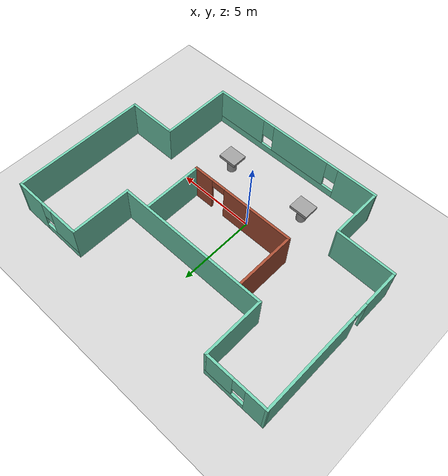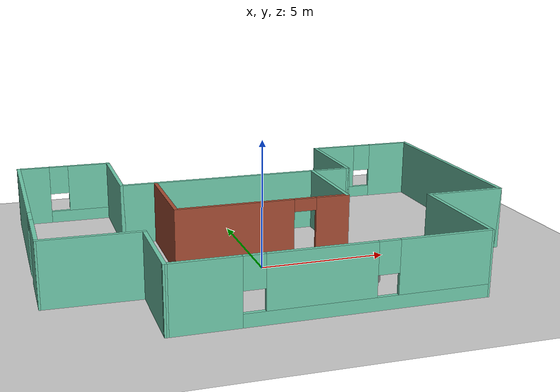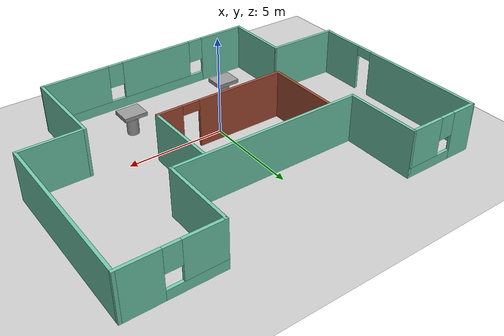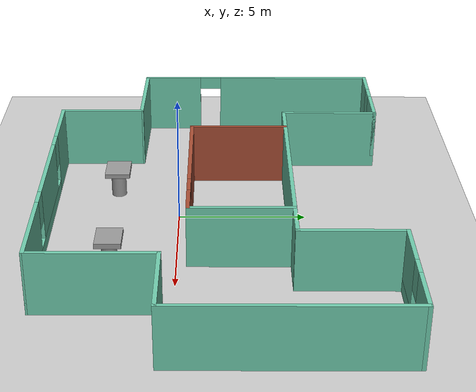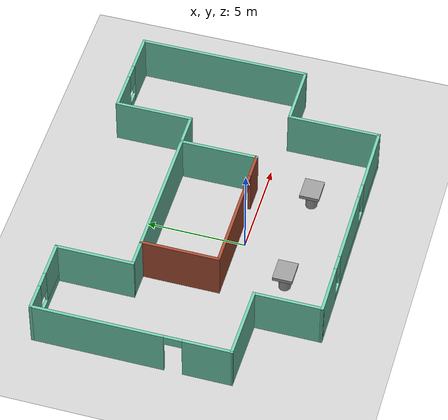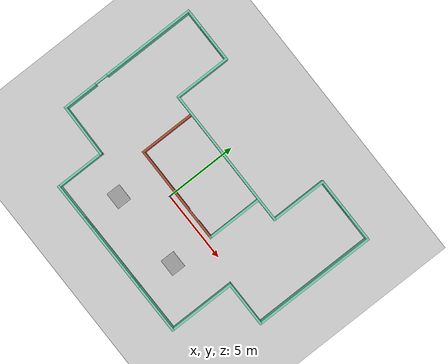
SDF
<sdf version="1.6">
 <world name="default">
  <plugin name="hello" filename="libhello.so"/>
  <model name="mybuilding">
   <pose>0.69783 1.54031 0 0 -0 0</pose>
   <link name="Wall_0">
    <pose>-7.22439 6.63019 0 0 -0 0</pose>
    <visual name="Wall_0_Visual_0">
     <pose>-1.32037 0 1.25 0 -0 0</pose>
     <geometry><box><size>1.35925 0.15 2.5</size></box></geometry>
     <material>
      <script><uri>file://media/materials/scripts/gazebo.material</uri><name>Gazebo/Grey</name></script>
      <ambient>0.435294 0.796078 0.67451 1</ambient>
     </material>
     <meta><layer>0</layer></meta>
    </visual>
    <collision name="Wall_0_Collision_0">
     <geometry><box><size>1.35925 0.15 2.5</size></box></geometry>
     <pose>-1.32037 0 1.25 0 -0 0</pose>
    </collision>
    <visual name="Wall_0_Visual_1">
     <pose>0.679626 0 0.25 0 -0 0</pose>
     <geometry><box><size>2.64075 0.15 0.5</size></box></geometry>
     <material>
      <script><uri>file://media/materials/scripts/gazebo.material</uri><name>Gazebo/Grey</name></script>
      <ambient>0.435294 0.796078 0.67451 1</ambient>
     </material>
     <meta><layer>0</layer></meta>
    </visual>
    <collision name="Wall_0_Collision_1">
     <geometry><box><size>2.64075 0.15 0.5</size></box></geometry>
     <pose>0.679626 0 0.25 0 -0 0</pose>
    </collision>
    <visual name="Wall_0_Visual_2">
     <pose>1.07963 0 1.5 0 -0 0</pose>
     <geometry><box><size>1.84075 0.15 2</size></box></geometry>
     <material>
      <script><uri>file://media/materials/scripts/gazebo.material</uri><name>Gazebo/Grey</name></script>
      <ambient>0.435294 0.796078 0.67451 1</ambient>
     </material>
     <meta><layer>0</layer></meta>
    </visual>
    <collision name="Wall_0_Collision_2">
     <geometry><box><size>1.84075 0.15 2</size></box></geometry>
     <pose>1.07963 0 1.5 0 -0 0</pose>
    </collision>
    <visual name="Wall_0_Visual_3">
     <pose>-0.240749 0 1.9 0 -0 0</pose>
     <geometry><box><size>0.8 0.15 1.2</size></box></geometry>
     <material>
      <script><uri>file://media/materials/scripts/gazebo.material</uri><name>Gazebo/Grey</name></script>
      <ambient>0.435294 0.796078 0.67451 1</ambient>
     </material>
     <meta><layer>0</layer></meta>
    </visual>
    <collision name="Wall_0_Collision_3">
     <geometry><box><size>0.8 0.15 1.2</size></box></geometry>
     <pose>-0.240749 0 1.9 0 -0 0</pose>
    </collision>
   </link>
   <link name="Wall_1">
    <collision name="Wall_1_Collision">
     <geometry><box><size>4 0.15 2.5</size></box></geometry>
     <pose>0 0 1.25 0 -0 0</pose>
    </collision>
    <visual name="Wall_1_Visual">
     <pose>0 0 1.25 0 -0 0</pose>
     <geometry><box><size>4 0.15 2.5</size></box></geometry>
     <material>
      <script><uri>file://media/materials/scripts/gazebo.material</uri><name>Gazebo/Grey</name></script>
      <ambient>0.435294 0.796078 0.67451 1</ambient>
     </material>
     <meta><layer>0</layer></meta>
    </visual>
    <pose>-5.29939 4.70519 0 0 0 -1.5708</pose>
   </link>
   <link name="Wall_10">
    <pose>0.280609 -6.59981 0 0 -0 0.005199</pose>
    <visual name="Wall_10_Visual_0">
     <pose>-4.54114 0 1.25 0 -0 0</pose>
     <geometry><box><size>2.60788 0.15 2.5</size></box></geometry>
     <material>
      <script><uri>file://media/materials/scripts/gazebo.material</uri><name>Gazebo/Grey</name></script>
      <ambient>0.435294 0.796078 0.67451 1</ambient>
     </material>
     <meta><layer>0</layer></meta>
    </visual>
    <collision name="Wall_10_Collision_0">
     <geometry><box><size>2.60788 0.15 2.5</size></box></geometry>
     <pose>-4.54114 0 1.25 0 -0 0</pose>
    </collision>
    <visual name="Wall_10_Visual_1">
     <pose>1.30394 0 0.25 0 -0 0</pose>
     <geometry><box><size>9.08228 0.15 0.5</size></box></geometry>
     <material>
      <script><uri>file://media/materials/scripts/gazebo.material</uri><name>Gazebo/Grey</name></script>
      <ambient>0.435294 0.796078 0.67451 1</ambient>
     </material>
     <meta><layer>0</layer></meta>
    </visual>
    <collision name="Wall_10_Collision_1">
     <geometry><box><size>9.08228 0.15 0.5</size></box></geometry>
     <pose>1.30394 0 0.25 0 -0 0</pose>
    </collision>
    <visual name="Wall_10_Visual_2">
     <pose>-0.463066 0 1.5 0 -0 0</pose>
     <geometry><box><size>3.94827 0.15 2</size></box></geometry>
     <material>
      <script><uri>file://media/materials/scripts/gazebo.material</uri><name>Gazebo/Grey</name></script>
      <ambient>0.435294 0.796078 0.67451 1</ambient>
     </material>
     <meta><layer>0</layer></meta>
    </visual>
    <collision name="Wall_10_Collision_2">
     <geometry><box><size>3.94827 0.15 2</size></box></geometry>
     <pose>-0.463066 0 1.5 0 -0 0</pose>
    </collision>
    <visual name="Wall_10_Visual_3">
     <pose>4.07807 0 1.5 0 -0 0</pose>
     <geometry><box><size>3.53401 0.15 2</size></box></geometry>
     <material>
      <script><uri>file://media/materials/scripts/gazebo.material</uri><name>Gazebo/Grey</name></script>
      <ambient>0.435294 0.796078 0.67451 1</ambient>
     </material>
     <meta><layer>0</layer></meta>
    </visual>
    <collision name="Wall_10_Collision_3">
     <geometry><box><size>3.53401 0.15 2</size></box></geometry>
     <pose>4.07807 0 1.5 0 -0 0</pose>
    </collision>
    <visual name="Wall_10_Visual_4">
     <pose>-2.8372 0 1.9 0 -0 0</pose>
     <geometry><box><size>0.8 0.15 1.2</size></box></geometry>
     <material>
      <script><uri>file://media/materials/scripts/gazebo.material</uri><name>Gazebo/Grey</name></script>
      <ambient>0.435294 0.796078 0.67451 1</ambient>
     </material>
     <meta><layer>0</layer></meta>
    </visual>
    <collision name="Wall_10_Collision_4">
     <geometry><box><size>0.8 0.15 1.2</size></box></geometry>
     <pose>-2.8372 0 1.9 0 -0 0</pose>
    </collision>
    <visual name="Wall_10_Visual_5">
     <pose>1.91107 0 1.9 0 -0 0</pose>
     <geometry><box><size>0.8 0.15 1.2</size></box></geometry>
     <material>
      <script><uri>file://media/materials/scripts/gazebo.material</uri><name>Gazebo/Grey</name></script>
      <ambient>0.435294 0.796078 0.67451 1</ambient>
     </material>
     <meta><layer>0</layer></meta>
    </visual>
    <collision name="Wall_10_Collision_5">
     <geometry><box><size>0.8 0.15 1.2</size></box></geometry>
     <pose>1.91107 0 1.9 0 -0 0</pose>
    </collision>
   </link>
   <link name="Wall_11">
    <collision name="Wall_11_Collision">
     <geometry><box><size>4.75 0.15 2.5</size></box></geometry>
     <pose>0 0 1.25 0 -0 0</pose>
    </collision>
    <visual name="Wall_11_Visual">
     <pose>0 0 1.25 0 -0 0</pose>
     <geometry><box><size>4.75 0.15 2.5</size></box></geometry>
     <material>
      <script><uri>file://media/materials/scripts/gazebo.material</uri><name>Gazebo/Grey</name></script>
      <ambient>0.435294 0.796078 0.67451 1</ambient>
     </material>
     <meta><layer>0</layer></meta>
    </visual>
    <pose>6.05061 -4.26981 0 0 -0 1.5708</pose>
   </link>
   <link name="Wall_12">
    <collision name="Wall_12_Collision">
     <geometry><box><size>3.25 0.15 2.5</size></box></geometry>
     <pose>0 0 1.25 0 -0 0</pose>
    </collision>
    <visual name="Wall_12_Visual">
     <pose>0 0 1.25 0 -0 0</pose>
     <geometry><box><size>3.25 0.15 2.5</size></box></geometry>
     <material>
      <script><uri>file://media/materials/scripts/gazebo.material</uri><name>Gazebo/Grey</name></script>
      <ambient>0.435294 0.796078 0.67451 1</ambient>
     </material>
     <meta><layer>0</layer></meta>
    </visual>
    <pose>7.60061 -1.96981 0 0 -0 0</pose>
   </link>
   <link name="Wall_13">
    <collision name="Wall_13_Collision">
     <geometry><box><size>8.75 0.15 2.5</size></box></geometry>
     <pose>0 0 1.25 0 -0 0</pose>
    </collision>
    <visual name="Wall_13_Visual">
     <pose>0 0 1.25 0 -0 0</pose>
     <geometry><box><size>8.75 0.15 2.5</size></box></geometry>
     <material>
      <script><uri>file://media/materials/scripts/gazebo.material</uri><name>Gazebo/Grey</name></script>
      <ambient>0.435294 0.796078 0.67451 1</ambient>
     </material>
     <meta><layer>0</layer></meta>
    </visual>
    <pose>9.15061 2.33019 0 0 -0 1.5708</pose>
   </link>
   <link name="Wall_16">
    <pose>6.85061 6.63019 0 0 -0 3.14159</pose>
    <visual name="Wall_16_Visual_0">
     <pose>-1.39467 0 1.25 0 -0 0</pose>
     <geometry><box><size>1.96067 0.15 2.5</size></box></geometry>
     <material>
      <script><uri>file://media/materials/scripts/gazebo.material</uri><name>Gazebo/Grey</name></script>
      <ambient>0.435294 0.796078 0.67451 1</ambient>
     </material>
     <meta><layer>0</layer></meta>
    </visual>
    <collision name="Wall_16_Collision_0">
     <geometry><box><size>1.96067 0.15 2.5</size></box></geometry>
     <pose>-1.39467 0 1.25 0 -0 0</pose>
    </collision>
    <visual name="Wall_16_Visual_1">
     <pose>0.980335 0 0.25 0 -0 0</pose>
     <geometry><box><size>2.78933 0.15 0.5</size></box></geometry>
     <material>
      <script><uri>file://media/materials/scripts/gazebo.material</uri><name>Gazebo/Grey</name></script>
      <ambient>0.435294 0.796078 0.67451 1</ambient>
     </material>
     <meta><layer>0</layer></meta>
    </visual>
    <collision name="Wall_16_Collision_1">
     <geometry><box><size>2.78933 0.15 0.5</size></box></geometry>
     <pose>0.980335 0 0.25 0 -0 0</pose>
    </collision>
    <visual name="Wall_16_Visual_2">
     <pose>1.38034 0 1.5 0 -0 0</pose>
     <geometry><box><size>1.98933 0.15 2</size></box></geometry>
     <material>
      <script><uri>file://media/materials/scripts/gazebo.material</uri><name>Gazebo/Grey</name></script>
      <ambient>0.435294 0.796078 0.67451 1</ambient>
     </material>
     <meta><layer>0</layer></meta>
    </visual>
    <collision name="Wall_16_Collision_2">
     <geometry><box><size>1.98933 0.15 2</size></box></geometry>
     <pose>1.38034 0 1.5 0 -0 0</pose>
    </collision>
    <visual name="Wall_16_Visual_3">
     <pose>-0.01433 0 1.9 0 -0 0</pose>
     <geometry><box><size>0.8 0.15 1.2</size></box></geometry>
     <material>
      <script><uri>file://media/materials/scripts/gazebo.material</uri><name>Gazebo/Grey</name></script>
      <ambient>0.435294 0.796078 0.67451 1</ambient>
     </material>
     <meta><layer>0</layer></meta>
    </visual>
    <collision name="Wall_16_Collision_3">
     <geometry><box><size>0.8 0.15 1.2</size></box></geometry>
     <pose>-0.01433 0 1.9 0 -0 0</pose>
    </collision>
   </link>
   <link name="Wall_2">
    <collision name="Wall_2_Collision">
     <geometry><box><size>10 0.15 2.5</size></box></geometry>
     <pose>0 0 1.25 0 -0 0</pose>
    </collision>
    <visual name="Wall_2_Visual">
     <pose>0 0 1.25 0 -0 0</pose>
     <geometry><box><size>10 0.15 2.5</size></box></geometry>
     <material>
      <script><uri>file://media/materials/scripts/gazebo.material</uri><name>Gazebo/Grey</name></script>
      <ambient>0.435294 0.796078 0.67451 1</ambient>
     </material>
     <meta><layer>0</layer></meta>
    </visual>
    <pose>-0.374391 2.78019 0 0 -0 0</pose>
   </link>
   <link name="Wall_20">
    <collision name="Wall_20_Collision">
     <geometry><box><size>4 0.15 2.5</size></box></geometry>
     <pose>0 0 1.25 0 -0 0</pose>
    </collision>
    <visual name="Wall_20_Visual">
     <pose>0 0 1.25 0 -0 0</pose>
     <geometry><box><size>4 0.15 2.5</size></box></geometry>
     <material>
      <script><uri>file://media/materials/scripts/gazebo.material</uri><name>Gazebo/Bricks</name></script>
      <ambient>0.435294 0.796078 0.67451 1</ambient>
     </material>
     <meta><layer>0</layer></meta>
    </visual>
    <pose>-3.91339 0.834194 0 0 0 -1.5708</pose>
   </link>
   <link name="Wall_21">
    <pose>-0.488391 -1.09081 0 0 -0 0</pose>
    <visual name="Wall_21_Visual_0">
     <pose>-1.13745 0 1.25 0 -0 0</pose>
     <geometry><box><size>4.72509 0.15 2.5</size></box></geometry>
     <material>
      <script><uri>file://media/materials/scripts/gazebo.material</uri><name>Gazebo/Bricks</name></script>
      <ambient>0.435294 0.796078 0.67451 1</ambient>
     </material>
     <meta><layer>0</layer></meta>
    </visual>
    <collision name="Wall_21_Collision_0">
     <geometry><box><size>4.72509 0.15 2.5</size></box></geometry>
     <pose>-1.13745 0 1.25 0 -0 0</pose>
    </collision>
    <visual name="Wall_21_Visual_1">
     <pose>2.81255 0 1.25 0 -0 0</pose>
     <geometry><box><size>1.37491 0.15 2.5</size></box></geometry>
     <material>
      <script><uri>file://media/materials/scripts/gazebo.material</uri><name>Gazebo/Bricks</name></script>
      <ambient>0.435294 0.796078 0.67451 1</ambient>
     </material>
     <meta><layer>0</layer></meta>
    </visual>
    <collision name="Wall_21_Collision_1">
     <geometry><box><size>1.37491 0.15 2.5</size></box></geometry>
     <pose>2.81255 0 1.25 0 -0 0</pose>
    </collision>
    <visual name="Wall_21_Visual_2">
     <pose>1.67509 0 2.25 0 -0 0</pose>
     <geometry><box><size>0.9 0.15 0.5</size></box></geometry>
     <material>
      <script><uri>file://media/materials/scripts/gazebo.material</uri><name>Gazebo/Bricks</name></script>
      <ambient>0.435294 0.796078 0.67451 1</ambient>
     </material>
     <meta><layer>0</layer></meta>
    </visual>
    <collision name="Wall_21_Collision_2">
     <geometry><box><size>0.9 0.15 0.5</size></box></geometry>
     <pose>1.67509 0 2.25 0 -0 0</pose>
    </collision>
   </link>
   <link name="Wall_26">
    <collision name="Wall_26_Collision">
     <geometry><box><size>4 0.15 2.5</size></box></geometry>
     <pose>0 0 1.25 0 -0 0</pose>
    </collision>
    <visual name="Wall_26_Visual">
     <pose>0 0 1.25 0 -0 0</pose>
     <geometry><box><size>4 0.15 2.5</size></box></geometry>
     <material>
      <script><uri>file://media/materials/scripts/gazebo.material</uri><name>Gazebo/Grey</name></script>
      <ambient>0.435294 0.796078 0.67451 1</ambient>
     </material>
     <meta><layer>0</layer></meta>
    </visual>
    <pose>2.93661 0.834194 0 0 -0 1.5708</pose>
   </link>
   <link name="Wall_3">
    <collision name="Wall_3_Collision">
     <geometry><box><size>4 0.15 2.5</size></box></geometry>
     <pose>0 0 1.25 0 -0 0</pose>
    </collision>
    <visual name="Wall_3_Visual">
     <pose>0 0 1.25 0 -0 0</pose>
     <geometry><box><size>4 0.15 2.5</size></box></geometry>
     <material>
      <script><uri>file://media/materials/scripts/gazebo.material</uri><name>Gazebo/Grey</name></script>
      <ambient>0.435294 0.796078 0.67451 1</ambient>
     </material>
     <meta><layer>0</layer></meta>
    </visual>
    <pose>4.55061 4.70519 0 0 -0 1.5708</pose>
   </link>
   <link name="Wall_6">
    <pose>-9.14939 1.70519 0 0 0 -1.5708</pose>
    <visual name="Wall_6_Visual_0">
     <pose>-1.68817 0 1.25 0 -0 0</pose>
     <geometry><box><size>6.62366 0.15 2.5</size></box></geometry>
     <material>
      <script><uri>file://media/materials/scripts/gazebo.material</uri><name>Gazebo/Grey</name></script>
      <ambient>0.435294 0.796078 0.67451 1</ambient>
     </material>
     <meta><layer>0</layer></meta>
    </visual>
    <collision name="Wall_6_Collision_0">
     <geometry><box><size>6.62366 0.15 2.5</size></box></geometry>
     <pose>-1.68817 0 1.25 0 -0 0</pose>
    </collision>
    <visual name="Wall_6_Visual_1">
     <pose>3.76183 0 1.25 0 -0 0</pose>
     <geometry><box><size>2.47634 0.15 2.5</size></box></geometry>
     <material>
      <script><uri>file://media/materials/scripts/gazebo.material</uri><name>Gazebo/Grey</name></script>
      <ambient>0.435294 0.796078 0.67451 1</ambient>
     </material>
     <meta><layer>0</layer></meta>
    </visual>
    <collision name="Wall_6_Collision_1">
     <geometry><box><size>2.47634 0.15 2.5</size></box></geometry>
     <pose>3.76183 0 1.25 0 -0 0</pose>
    </collision>
    <visual name="Wall_6_Visual_2">
     <pose>2.07366 0 2.25 0 -0 0</pose>
     <geometry><box><size>0.9 0.15 0.5</size></box></geometry>
     <material>
      <script><uri>file://media/materials/scripts/gazebo.material</uri><name>Gazebo/Grey</name></script>
      <ambient>0.435294 0.796078 0.67451 1</ambient>
     </material>
     <meta><layer>0</layer></meta>
    </visual>
    <collision name="Wall_6_Collision_2">
     <geometry><box><size>0.9 0.15 0.5</size></box></geometry>
     <pose>2.07366 0 2.25 0 -0 0</pose>
    </collision>
   </link>
   <link name="Wall_8">
    <collision name="Wall_8_Collision">
     <geometry><box><size>3.81049 0.15 2.5</size></box></geometry>
     <pose>0 0 1.25 0 -0 0</pose>
    </collision>
    <visual name="Wall_8_Visual">
     <pose>0 0 1.25 0 -0 0</pose>
     <geometry><box><size>3.81049 0.15 2.5</size></box></geometry>
     <material>
      <script><uri>file://media/materials/scripts/gazebo.material</uri><name>Gazebo/Grey</name></script>
      <ambient>0.435294 0.796078 0.67451 1</ambient>
     </material>
     <meta><layer>0</layer></meta>
    </visual>
    <pose>-7.31939 -3.24981 0 0 0 -0.016392</pose>
   </link>
   <link name="Wall_9">
    <collision name="Wall_9_Collision">
     <geometry><box><size>3.5 0.15 2.5</size></box></geometry>
     <pose>0 0 1.25 0 -0 0</pose>
    </collision>
    <visual name="Wall_9_Visual">
     <pose>0 0 1.25 0 -0 0</pose>
     <geometry><box><size>3.5 0.15 2.5</size></box></geometry>
     <material>
      <script><uri>file://media/materials/scripts/gazebo.material</uri><name>Gazebo/Grey</name></script>
      <ambient>0.435294 0.796078 0.67451 1</ambient>
     </material>
     <meta><layer>0</layer></meta>
    </visual>
    <pose>-5.48939 -4.95481 0 0 0 -1.5708</pose>
   </link>
   <static>1</static>
  </model>
  <light name="sun" type="directional">
   <pose>0 0 10 0 -0 0</pose>
   <diffuse>0.8 0.8 0.8 1</diffuse>
   <specular>0.2 0.2 0.2 1</specular>
   <attenuation>
    <range>1000</range>
    <constant>0.9</constant>
    <linear>0.01</linear>
    <quadratic>0.001</quadratic>
   </attenuation>
   <direction>-0.5 0.1 -0.9</direction>
  </light>
  <model name="ground_plane">
   <static>1</static>
   <link name="link">
    <collision name="collision">
     <geometry><plane><normal>0 0 1</normal><size>100 100</size></plane></geometry>
     <surface>
      <contact><collide_bitmask>65535</collide_bitmask></contact>
      <friction><ode><mu>100</mu><mu2>50</mu2></ode></friction>
     </surface>
    </collision>
    <visual name="visual">
     <cast_shadows>0</cast_shadows>
     <geometry><plane><normal>0 0 1</normal><size>100 100</size></plane></geometry>
     <material>
      <script><uri>file://media/materials/scripts/gazebo.material</uri><name>Gazebo/Grey</name></script>
     </material>
    </visual>
   </link>
  </model>
  <gravity>0 0 -9.8</gravity>
  <magnetic_field>6e-06 2.3e-05 -4.2e-05</magnetic_field>
  <atmosphere type="adiabatic"/>
  <physics name="default_physics" default="0" type="ode">
   <max_step_size>0.001</max_step_size>
   <real_time_factor>1</real_time_factor>
   <real_time_update_rate>1000</real_time_update_rate>
  </physics>
  <scene><ambient>0.4 0.4 0.4 1</ambient><background>0.7 0.7 0.7 1</background><shadows>1</shadows></scene>
  <spherical_coordinates>
   <surface_model>EARTH_WGS84</surface_model>
   <latitude_deg>0</latitude_deg>
   <longitude_deg>0</longitude_deg>
   <elevation>0</elevation>
   <heading_deg>0</heading_deg>
  </spherical_coordinates>
  <model name="table">
   <link name="link_1">
    <pose>-0 -0 -0.3 0 -0 0</pose>
    <inertial>
     <mass>1</mass>
     <inertia><ixx>0.145833</ixx><ixy>0</ixy><ixz>0</ixz><iyy>0.145833</iyy><iyz>0</iyz><izz>0.125</izz></inertia>
    </inertial>
    <visual name="visual">
     <geometry><cylinder><radius>0.3</radius><length>1</length></cylinder></geometry>
     <material>
      <lighting>1</lighting>
      <script><uri>file://media/materials/scripts/gazebo.material</uri><name>Gazebo/Grey</name></script>
      <ambient>0.3 0.3 0.3 1</ambient>
      <diffuse>0.7 0.7 0.7 1</diffuse>
      <specular>0.01 0.01 0.01 1</specular>
      <emissive>0 0 0 1</emissive>
      <shader type="vertex"><normal_map>__default__</normal_map></shader>
     </material>
    </visual>
    <collision name="collision">
     <geometry><cylinder><radius>0.3</radius><length>1</length></cylinder></geometry>
     <surface>
      <friction>
       <ode><mu>1</mu><mu2>1</mu2><fdir1>0 0 0</fdir1><slip1>0</slip1><slip2>0</slip2></ode>
       <torsional>
        <coefficient>1</coefficient>
        <patch_radius>0</patch_radius>
        <surface_radius>0</surface_radius>
        <use_patch_radius>1</use_patch_radius>
        <ode><slip>0</slip></ode>
       </torsional>
      </friction>
      <bounce><restitution_coefficient>0</restitution_coefficient><threshold>1e+06</threshold></bounce>
      <contact>
       <collide_without_contact>0</collide_without_contact>
       <collide_without_contact_bitmask>1</collide_without_contact_bitmask>
       <collide_bitmask>1</collide_bitmask>
       <ode>
        <soft_cfm>0</soft_cfm>
        <soft_erp>0.2</soft_erp>
        <kp>1e+13</kp>
        <kd>1</kd>
        <max_vel>0.01</max_vel>
        <min_depth>0</min_depth>
       </ode>
       <bullet>
        <split_impulse>1</split_impulse>
        <split_impulse_penetration_threshold>-0.01</split_impulse_penetration_threshold>
        <soft_cfm>0</soft_cfm>
        <soft_erp>0.2</soft_erp>
        <kp>1e+13</kp>
        <kd>1</kd>
       </bullet>
      </contact>
     </surface>
    </collision>
   </link>
   <link name="link_4">
    <pose>-0 -0 0.3 0 -0 0</pose>
    <inertial>
     <mass>1</mass>
     <inertia>
      <ixx>0.166667</ixx>
      <ixy>0</ixy>
      <ixz>0</ixz>
      <iyy>0.166667</iyy>
      <iyz>0</iyz>
      <izz>0.166667</izz>
     </inertia>
    </inertial>
    <visual name="visual">
     <geometry><box><size>1.2 1 0.2</size></box></geometry>
     <material>
      <lighting>1</lighting>
      <script><uri>file://media/materials/scripts/gazebo.material</uri><name>Gazebo/Grey</name></script>
      <ambient>0.3 0.3 0.3 1</ambient>
      <diffuse>0.7 0.7 0.7 1</diffuse>
      <specular>0.01 0.01 0.01 1</specular>
      <emissive>0 0 0 1</emissive>
      <shader type="vertex"><normal_map>__default__</normal_map></shader>
     </material>
    </visual>
    <collision name="collision">
     <geometry><box><size>1.2 1 0.2</size></box></geometry>
     <surface>
      <friction>
       <ode><mu>1</mu><mu2>1</mu2><fdir1>0 0 0</fdir1><slip1>0</slip1><slip2>0</slip2></ode>
       <torsional>
        <coefficient>1</coefficient>
        <patch_radius>0</patch_radius>
        <surface_radius>0</surface_radius>
        <use_patch_radius>1</use_patch_radius>
        <ode><slip>0</slip></ode>
       </torsional>
      </friction>
      <bounce><restitution_coefficient>0</restitution_coefficient><threshold>1e+06</threshold></bounce>
      <contact>
       <collide_without_contact>0</collide_without_contact>
       <collide_without_contact_bitmask>1</collide_without_contact_bitmask>
       <collide_bitmask>1</collide_bitmask>
       <ode>
        <soft_cfm>0</soft_cfm>
        <soft_erp>0.2</soft_erp>
        <kp>1e+13</kp>
        <kd>1</kd>
        <max_vel>0.01</max_vel>
        <min_depth>0</min_depth>
       </ode>
       <bullet>
        <split_impulse>1</split_impulse>
        <split_impulse_penetration_threshold>-0.01</split_impulse_penetration_threshold>
        <soft_cfm>0</soft_cfm>
        <soft_erp>0.2</soft_erp>
        <kp>1e+13</kp>
        <kd>1</kd>
       </bullet>
      </contact>
     </surface>
    </collision>
   </link>
   <joint name="link_1_JOINT_0" type="revolute">
    <parent>link_1</parent>
    <child>link_4</child>
    <axis>
     <xyz>1 0 0</xyz>
     <use_parent_model_frame>0</use_parent_model_frame>
     <limit>
      <lower>-1.79769e+308</lower>
      <upper>1.79769e+308</upper>
      <effort>-1</effort>
      <velocity>-1</velocity>
     </limit>
     <dynamics>
      <spring_reference>0</spring_reference>
      <spring_stiffness>0</spring_stiffness>
      <damping>0</damping>
     </dynamics>
    </axis>
    <physics>
     <ode><limit><cfm>0</cfm><erp>0.2</erp></limit><suspension><cfm>0</cfm><erp>0.2</erp></suspension></ode>
    </physics>
   </joint>
   <static>0</static>
   <pose>-1.98301 -2.55779 0.799996 0 0 -4.5e-05</pose>
  </model>
  <model name="table_0">
   <link name="link_1">
    <pose>-0 -0 -0.3 0 -0 0</pose>
    <inertial>
     <mass>1</mass>
     <inertia><ixx>0.145833</ixx><ixy>0</ixy><ixz>0</ixz><iyy>0.145833</iyy><iyz>0</iyz><izz>0.125</izz></inertia>
    </inertial>
    <visual name="visual">
     <geometry><cylinder><radius>0.3</radius><length>1</length></cylinder></geometry>
     <material>
      <lighting>1</lighting>
      <script><uri>file://media/materials/scripts/gazebo.material</uri><name>Gazebo/Grey</name></script>
      <ambient>0.3 0.3 0.3 1</ambient>
      <diffuse>0.7 0.7 0.7 1</diffuse>
      <specular>0.01 0.01 0.01 1</specular>
      <emissive>0 0 0 1</emissive>
      <shader type="vertex"><normal_map>__default__</normal_map></shader>
     </material>
    </visual>
    <collision name="collision">
     <geometry><cylinder><radius>0.3</radius><length>1</length></cylinder></geometry>
     <surface>
      <friction>
       <ode><mu>1</mu><mu2>1</mu2><fdir1>0 0 0</fdir1><slip1>0</slip1><slip2>0</slip2></ode>
       <torsional>
        <coefficient>1</coefficient>
        <patch_radius>0</patch_radius>
        <surface_radius>0</surface_radius>
        <use_patch_radius>1</use_patch_radius>
        <ode><slip>0</slip></ode>
       </torsional>
      </friction>
      <bounce><restitution_coefficient>0</restitution_coefficient><threshold>1e+06</threshold></bounce>
      <contact>
       <collide_without_contact>0</collide_without_contact>
       <collide_without_contact_bitmask>1</collide_without_contact_bitmask>
       <collide_bitmask>1</collide_bitmask>
       <ode>
        <soft_cfm>0</soft_cfm>
        <soft_erp>0.2</soft_erp>
        <kp>1e+13</kp>
        <kd>1</kd>
        <max_vel>0.01</max_vel>
        <min_depth>0</min_depth>
       </ode>
       <bullet>
        <split_impulse>1</split_impulse>
        <split_impulse_penetration_threshold>-0.01</split_impulse_penetration_threshold>
        <soft_cfm>0</soft_cfm>
        <soft_erp>0.2</soft_erp>
        <kp>1e+13</kp>
        <kd>1</kd>
       </bullet>
      </contact>
     </surface>
    </collision>
   </link>
   <link name="link_4">
    <pose>-0 -0 0.3 0 -0 0</pose>
    <inertial>
     <mass>1</mass>
     <inertia>
      <ixx>0.166667</ixx>
      <ixy>0</ixy>
      <ixz>0</ixz>
      <iyy>0.166667</iyy>
      <iyz>0</iyz>
      <izz>0.166667</izz>
     </inertia>
    </inertial>
    <visual name="visual">
     <geometry><box><size>1.2 1 0.2</size></box></geometry>
     <material>
      <lighting>1</lighting>
      <script><uri>file://media/materials/scripts/gazebo.material</uri><name>Gazebo/Grey</name></script>
      <ambient>0.3 0.3 0.3 1</ambient>
      <diffuse>0.7 0.7 0.7 1</diffuse>
      <specular>0.01 0.01 0.01 1</specular>
      <emissive>0 0 0 1</emissive>
      <shader type="vertex"><normal_map>__default__</normal_map></shader>
     </material>
    </visual>
    <collision name="collision">
     <geometry><box><size>1.2 1 0.2</size></box></geometry>
     <surface>
      <friction>
       <ode><mu>1</mu><mu2>1</mu2><fdir1>0 0 0</fdir1><slip1>0</slip1><slip2>0</slip2></ode>
       <torsional>
        <coefficient>1</coefficient>
        <patch_radius>0</patch_radius>
        <surface_radius>0</surface_radius>
        <use_patch_radius>1</use_patch_radius>
        <ode><slip>0</slip></ode>
       </torsional>
      </friction>
      <bounce><restitution_coefficient>0</restitution_coefficient><threshold>1e+06</threshold></bounce>
      <contact>
       <collide_without_contact>0</collide_without_contact>
       <collide_without_contact_bitmask>1</collide_without_contact_bitmask>
       <collide_bitmask>1</collide_bitmask>
       <ode>
        <soft_cfm>0</soft_cfm>
        <soft_erp>0.2</soft_erp>
        <kp>1e+13</kp>
        <kd>1</kd>
        <max_vel>0.01</max_vel>
        <min_depth>0</min_depth>
       </ode>
       <bullet>
        <split_impulse>1</split_impulse>
        <split_impulse_penetration_threshold>-0.01</split_impulse_penetration_threshold>
        <soft_cfm>0</soft_cfm>
        <soft_erp>0.2</soft_erp>
        <kp>1e+13</kp>
        <kd>1</kd>
       </bullet>
      </contact>
     </surface>
    </collision>
   </link>
   <joint name="link_1_JOINT_0" type="revolute">
    <parent>link_1</parent>
    <child>link_4</child>
    <axis>
     <xyz>1 0 0</xyz>
     <use_parent_model_frame>0</use_parent_model_frame>
     <limit>
      <lower>-1.79769e+308</lower>
      <upper>1.79769e+308</upper>
      <effort>-1</effort>
      <velocity>-1</velocity>
     </limit>
     <dynamics>
      <spring_reference>0</spring_reference>
      <spring_stiffness>0</spring_stiffness>
      <damping>0</damping>
     </dynamics>
    </axis>
    <physics>
     <ode><limit><cfm>0</cfm><erp>0.2</erp></limit><suspension><cfm>0</cfm><erp>0.2</erp></suspension></ode>
    </physics>
   </joint>
   <static>0</static>
   <pose>3.48374 -2.47821 0.799996 0 0 -4.4e-05</pose>
  </model>
 </world>
</sdf>
